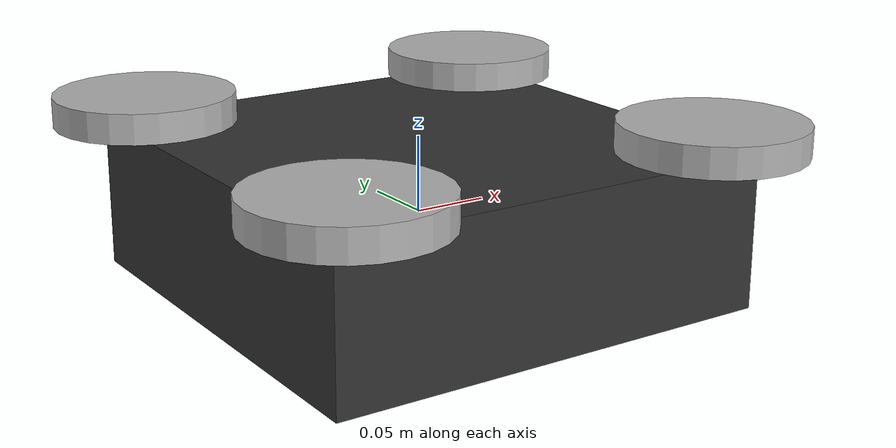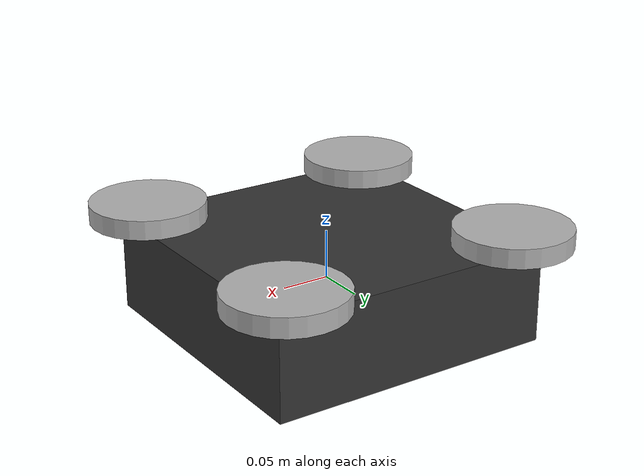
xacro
<?xml version="1.0"?>
<!-- ROS-side URDF for the pathfinder cheater drone.
     This drives robot_state_publisher / TF only. The Gazebo simulation
     uses gazebo/drone.sdf (which carries the VelocityControl plugin). -->
<robot name="pathfinder_drone" xmlns:xacro="http://www.ros.org/wiki/xacro">

  <xacro:property name="base_size_x" value="0.30"/>
  <xacro:property name="base_size_y" value="0.30"/>
  <xacro:property name="base_size_z" value="0.10"/>
  <xacro:property name="base_mass"   value="1.5"/>

  <xacro:property name="rotor_radius" value="0.06"/>
  <xacro:property name="rotor_height" value="0.02"/>
  <xacro:property name="rotor_mass"   value="0.05"/>
  <xacro:property name="arm"          value="0.13"/>

  <material name="drone_dark_gray">
    <color rgba="0.2 0.2 0.2 1.0"/>
  </material>
  <material name="rotor_light_gray">
    <color rgba="0.7 0.7 0.7 1.0"/>
  </material>

  <xacro:macro name="rotor" params="suffix x y">
    <link name="rotor_${suffix}">
      <visual>
        <geometry>
          <cylinder radius="${rotor_radius}" length="${rotor_height}"/>
        </geometry>
        <material name="rotor_light_gray"/>
      </visual>
      <collision>
        <geometry>
          <cylinder radius="${rotor_radius}" length="${rotor_height}"/>
        </geometry>
      </collision>
      <inertial>
        <mass value="${rotor_mass}"/>
        <inertia ixx="1e-5" ixy="0" ixz="0" iyy="1e-5" iyz="0" izz="2e-5"/>
      </inertial>
    </link>
    <joint name="base_to_rotor_${suffix}" type="fixed">
      <parent link="base_link"/>
      <child link="rotor_${suffix}"/>
      <origin xyz="${x} ${y} ${base_size_z/2 + rotor_height/2}" rpy="0 0 0"/>
    </joint>
  </xacro:macro>

  <link name="base_link">
    <visual>
      <geometry>
        <box size="${base_size_x} ${base_size_y} ${base_size_z}"/>
      </geometry>
      <material name="drone_dark_gray"/>
    </visual>
    <collision>
      <geometry>
        <box size="${base_size_x} ${base_size_y} ${base_size_z}"/>
      </geometry>
    </collision>
    <inertial>
      <mass value="${base_mass}"/>
      <inertia
        ixx="${base_mass * (base_size_y*base_size_y + base_size_z*base_size_z) / 12.0}"
        iyy="${base_mass * (base_size_x*base_size_x + base_size_z*base_size_z) / 12.0}"
        izz="${base_mass * (base_size_x*base_size_x + base_size_y*base_size_y) / 12.0}"
        ixy="0" ixz="0" iyz="0"/>
    </inertial>
  </link>

  <xacro:rotor suffix="fl" x="${arm}"  y="${arm}"/>
  <xacro:rotor suffix="fr" x="${arm}"  y="-${arm}"/>
  <xacro:rotor suffix="rl" x="-${arm}" y="${arm}"/>
  <xacro:rotor suffix="rr" x="-${arm}" y="-${arm}"/>

</robot>
